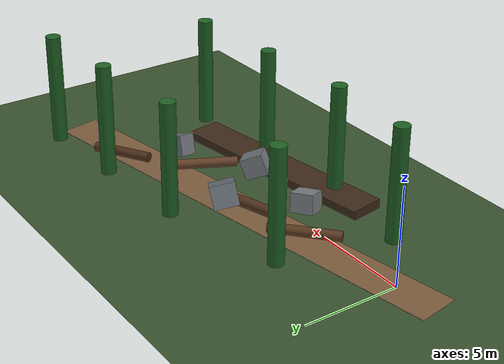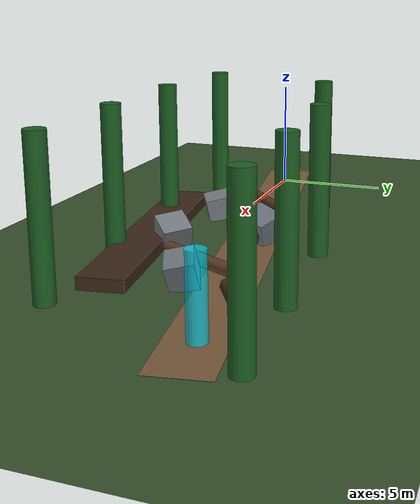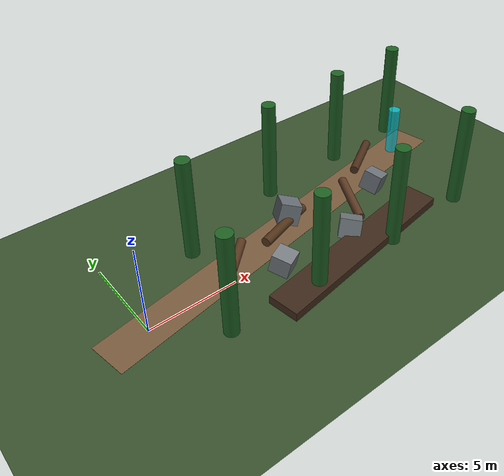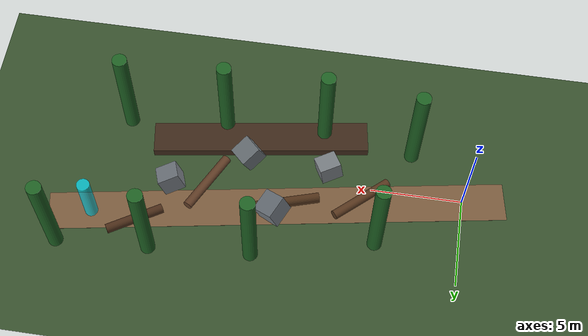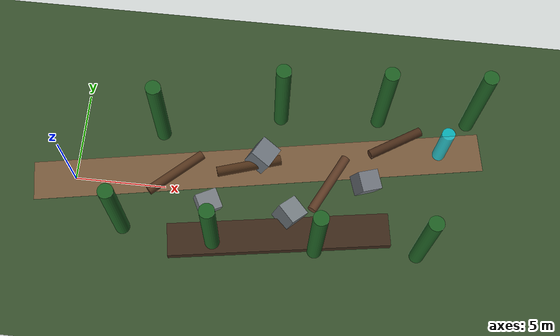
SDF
<?xml version="1.0" ?>
<sdf version="1.8">
  <world name="forest_extreme_hardcore">
    <physics name="1ms" type="ignored">
      <max_step_size>0.002</max_step_size>
      <real_time_factor>1.0</real_time_factor>
    </physics>

    <!-- Plugins -->
    <plugin filename="gz-sim-physics-system" name="gz::sim::systems::Physics"/>
    <plugin filename="gz-sim-user-commands-system" name="gz::sim::systems::UserCommands"/>
    <plugin filename="gz-sim-scene-broadcaster-system" name="gz::sim::systems::SceneBroadcaster"/>
    <plugin filename="gz-sim-sensors-system" name="gz::sim::systems::Sensors">
      <render_engine>ogre2</render_engine>
    </plugin>
    <plugin filename="gz-sim-imu-system" name="gz::sim::systems::Imu"/>
    <plugin filename="gz-sim-navsat-system" name="gz::sim::systems::NavSat"/>

    <!-- High-Contrast Sunlight & Forest Canopy Shadows -->
    <light type="directional" name="sun">
      <cast_shadows>true</cast_shadows>
      <pose>10 15 30 0 0 0</pose>
      <diffuse>0.85 0.82 0.75 1</diffuse>
      <specular>0.25 0.25 0.25 1</specular>
      <direction>-0.5 0.3 -0.9</direction>
    </light>

    <!-- Ground Plane: Forest Floor Terrain -->
    <model name="forest_ground">
      <static>true</static>
      <link name="link">
        <collision name="collision">
          <geometry>
            <plane>
              <normal>0 0 1</normal>
              <size>100 80</size>
            </plane>
          </geometry>
          <surface>
            <friction>
              <ode>
                <mu>1.2</mu>
                <mu2>1.2</mu2>
              </ode>
            </friction>
          </surface>
        </collision>
        <visual name="visual">
          <geometry>
            <plane>
              <normal>0 0 1</normal>
              <size>100 80</size>
            </plane>
          </geometry>
          <material>
            <ambient>0.18 0.28 0.16 1</ambient>
            <diffuse>0.22 0.32 0.18 1</diffuse>
            <specular>0.05 0.05 0.05 1</specular>
          </material>
        </visual>
      </link>
    </model>

    <!-- Dirt Trail Ribbon Visual -->
    <model name="dirt_trail">
      <static>true</static>
      <link name="trail_link">
        <pose>10 1.75 0.005 0 0 0.17</pose>
        <visual name="trail_visual">
          <geometry>
            <box><size>25 2.2 0.01</size></box>
          </geometry>
          <material>
            <ambient>0.42 0.32 0.20 1</ambient>
            <diffuse>0.48 0.36 0.24 1</diffuse>
          </material>
        </visual>
      </link>
    </model>

    <!-- ==================== EXTREME OBSTACLES: FALLEN TREE BARRICADES ==================== -->

    <!-- Fallen Tree 1 (x=5.5m, y=0.8m) - Angled Barricade forcing right shoulder maneuver -->
    <model name="fallen_tree_barricade_1">
      <static>true</static>
      <link name="log_link">
        <pose>5.5 0.8 0.35 0.12 1.57 0.85</pose>
        <collision name="collision">
          <geometry><cylinder><radius>0.26</radius><length>3.6</length></cylinder></geometry>
        </collision>
        <visual name="visual">
          <geometry><cylinder><radius>0.26</radius><length>3.6</length></cylinder></geometry>
          <material>
            <ambient>0.30 0.18 0.10 1</ambient>
            <diffuse>0.35 0.22 0.12 1</diffuse>
          </material>
        </visual>
      </link>
    </model>

    <!-- Fallen Tree 2 (x=9.5m, y=1.6m) - Heavy Trunk blocking left-central trail -->
    <model name="fallen_tree_barricade_2">
      <static>true</static>
      <link name="log_link">
        <pose>9.5 1.6 0.38 0.15 1.57 0.45</pose>
        <collision name="collision">
          <geometry><cylinder><radius>0.28</radius><length>3.6</length></cylinder></geometry>
        </collision>
        <visual name="visual">
          <geometry><cylinder><radius>0.28</radius><length>3.6</length></cylinder></geometry>
          <material>
            <ambient>0.28 0.16 0.08 1</ambient>
            <diffuse>0.32 0.20 0.10 1</diffuse>
          </material>
        </visual>
      </link>
    </model>

    <!-- Fallen Tree 3 (x=14.0m, y=1.0m) - Double Log Barrier forcing left bypass -->
    <model name="fallen_tree_barricade_3">
      <static>true</static>
      <link name="log_link">
        <pose>14.0 1.0 0.36 0 1.57 1.10</pose>
        <collision name="collision">
          <geometry><cylinder><radius>0.26</radius><length>3.6</length></cylinder></geometry>
        </collision>
        <visual name="visual">
          <geometry><cylinder><radius>0.26</radius><length>3.6</length></cylinder></geometry>
          <material>
            <ambient>0.32 0.20 0.12 1</ambient>
            <diffuse>0.38 0.24 0.15 1</diffuse>
          </material>
        </visual>
      </link>
    </model>

    <!-- Fallen Tree 4 (x=17.5m, y=3.8m) - Goal Approach Barricade -->
    <model name="fallen_tree_barricade_4">
      <static>true</static>
      <link name="log_link">
        <pose>17.5 3.8 0.35 0.1 1.57 0.65</pose>
        <collision name="collision">
          <geometry><cylinder><radius>0.26</radius><length>3.2</length></cylinder></geometry>
        </collision>
        <visual name="visual">
          <geometry><cylinder><radius>0.26</radius><length>3.2</length></cylinder></geometry>
          <material>
            <ambient>0.26 0.15 0.08 1</ambient>
            <diffuse>0.30 0.18 0.10 1</diffuse>
          </material>
        </visual>
      </link>
    </model>

    <!-- ==================== EXTREME OBSTACLES: BOULDER FIELDS ==================== -->

    <!-- Boulder Cluster A (x=7.5m, y=-0.8m) -->
    <model name="boulder_field_1">
      <static>true</static>
      <link name="rock_link">
        <pose>7.5 -0.8 0.55 0.2 0.1 0.5</pose>
        <collision name="collision">
          <geometry><box><size>1.2 1.1 1.0</size></box></geometry>
        </collision>
        <visual name="visual">
          <geometry><box><size>1.2 1.1 1.0</size></box></geometry>
          <material>
            <ambient>0.40 0.42 0.45 1</ambient>
            <diffuse>0.48 0.50 0.52 1</diffuse>
          </material>
        </visual>
      </link>
    </model>

    <!-- Boulder Cluster B (x=10.2m, y=2.2m) - Primary Boulder Trap -->
    <model name="boulder_field_2">
      <static>true</static>
      <link name="rock_link">
        <pose>10.2 2.2 0.65 0.3 0.2 1.1</pose>
        <collision name="collision">
          <geometry><box><size>1.3 1.2 1.2</size></box></geometry>
        </collision>
        <visual name="visual">
          <geometry><box><size>1.3 1.2 1.2</size></box></geometry>
          <material>
            <ambient>0.35 0.38 0.40 1</ambient>
            <diffuse>0.42 0.45 0.48 1</diffuse>
          </material>
        </visual>
      </link>
    </model>

    <!-- Boulder Cluster C (x=12.0m, y=-1.0m) -->
    <model name="boulder_field_3">
      <static>true</static>
      <link name="rock_link">
        <pose>12.0 -1.0 0.60 0.1 0.4 0.8</pose>
        <collision name="collision">
          <geometry><box><size>1.2 1.2 1.1</size></box></geometry>
        </collision>
        <visual name="visual">
          <geometry><box><size>1.2 1.2 1.1</size></box></geometry>
          <material>
            <ambient>0.38 0.40 0.42 1</ambient>
            <diffuse>0.45 0.48 0.50 1</diffuse>
          </material>
        </visual>
      </link>
    </model>

    <!-- Boulder Cluster D (x=16.0m, y=1.2m) -->
    <model name="boulder_field_4">
      <static>true</static>
      <link name="rock_link">
        <pose>16.0 1.2 0.65 0.2 0.3 0.4</pose>
        <collision name="collision">
          <geometry><box><size>1.2 1.1 1.1</size></box></geometry>
        </collision>
        <visual name="visual">
          <geometry><box><size>1.2 1.1 1.1</size></box></geometry>
          <material>
            <ambient>0.36 0.38 0.42 1</ambient>
            <diffuse>0.44 0.46 0.49 1</diffuse>
          </material>
        </visual>
      </link>
    </model>

    <!-- ==================== RAVINE & DITCH HAZARDS ==================== -->

    <!-- Left Shoulder Trench (x=11.5m, y=-2.2m) -->
    <model name="trench_left_shoulder">
      <static>true</static>
      <link name="trench_link">
        <pose>11.5 -2.2 0.25 0 0 0.15</pose>
        <collision name="collision">
          <geometry><box><size>12.0 1.8 0.5</size></box></geometry>
        </collision>
        <visual name="visual">
          <geometry><box><size>12.0 1.8 0.5</size></box></geometry>
          <material>
            <ambient>0.20 0.14 0.08 1</ambient>
            <diffuse>0.24 0.16 0.10 1</diffuse>
          </material>
        </visual>
      </link>
    </model>

    <!-- ==================== DENSE PINE TREE CLUSTERS ==================== -->
    <model name="dense_pine_1"><static>true</static><link name="l"><pose>3.0 -2.5 3.0 0 0 0</pose><collision name="c"><geometry><cylinder><radius>0.4</radius><length>6.0</length></cylinder></geometry></collision><visual name="v"><geometry><cylinder><radius>0.4</radius><length>6.0</length></cylinder></geometry><material><ambient>0.12 0.38 0.14 1</ambient></material></visual></link></model>
    <model name="dense_pine_2"><static>true</static><link name="l"><pose>4.5 3.2 3.0 0 0 0</pose><collision name="c"><geometry><cylinder><radius>0.4</radius><length>6.0</length></cylinder></geometry></collision><visual name="v"><geometry><cylinder><radius>0.4</radius><length>6.0</length></cylinder></geometry><material><ambient>0.12 0.38 0.14 1</ambient></material></visual></link></model>
    <model name="dense_pine_3"><static>true</static><link name="l"><pose>8.0 -3.0 3.0 0 0 0</pose><collision name="c"><geometry><cylinder><radius>0.4</radius><length>6.0</length></cylinder></geometry></collision><visual name="v"><geometry><cylinder><radius>0.4</radius><length>6.0</length></cylinder></geometry><material><ambient>0.12 0.38 0.14 1</ambient></material></visual></link></model>
    <model name="dense_pine_4"><static>true</static><link name="l"><pose>11.0 4.8 3.0 0 0 0</pose><collision name="c"><geometry><cylinder><radius>0.4</radius><length>6.0</length></cylinder></geometry></collision><visual name="v"><geometry><cylinder><radius>0.4</radius><length>6.0</length></cylinder></geometry><material><ambient>0.12 0.38 0.14 1</ambient></material></visual></link></model>
    <model name="dense_pine_5"><static>true</static><link name="l"><pose>13.5 -2.8 3.0 0 0 0</pose><collision name="c"><geometry><cylinder><radius>0.4</radius><length>6.0</length></cylinder></geometry></collision><visual name="v"><geometry><cylinder><radius>0.4</radius><length>6.0</length></cylinder></geometry><material><ambient>0.12 0.38 0.14 1</ambient></material></visual></link></model>
    <model name="dense_pine_6"><static>true</static><link name="l"><pose>16.5 5.2 3.0 0 0 0</pose><collision name="c"><geometry><cylinder><radius>0.4</radius><length>6.0</length></cylinder></geometry></collision><visual name="v"><geometry><cylinder><radius>0.4</radius><length>6.0</length></cylinder></geometry><material><ambient>0.12 0.38 0.14 1</ambient></material></visual></link></model>
    <model name="dense_pine_7"><static>true</static><link name="l"><pose>19.0 -2.5 3.0 0 0 0</pose><collision name="c"><geometry><cylinder><radius>0.4</radius><length>6.0</length></cylinder></geometry></collision><visual name="v"><geometry><cylinder><radius>0.4</radius><length>6.0</length></cylinder></geometry><material><ambient>0.12 0.38 0.14 1</ambient></material></visual></link></model>
    <model name="dense_pine_8"><static>true</static><link name="l"><pose>21.5 5.5 3.0 0 0 0</pose><collision name="c"><geometry><cylinder><radius>0.4</radius><length>6.0</length></cylinder></geometry></collision><visual name="v"><geometry><cylinder><radius>0.4</radius><length>6.0</length></cylinder></geometry><material><ambient>0.12 0.38 0.14 1</ambient></material></visual></link></model>

    <!-- Point B Goal Marker (x=20.0m, y=3.5m) -->
    <model name="goal_point_b_beacon">
      <static>true</static>
      <link name="beacon_link">
        <pose>20.0 3.5 1.5 0 0 0</pose>
        <visual name="beacon_visual">
          <geometry><cylinder><radius>0.35</radius><length>3.0</length></cylinder></geometry>
          <material>
            <ambient>0.0 0.9 1.0 0.7</ambient>
            <diffuse>0.0 0.9 1.0 0.7</diffuse>
          </material>
        </visual>
      </link>
    </model>

  </world>
</sdf>
